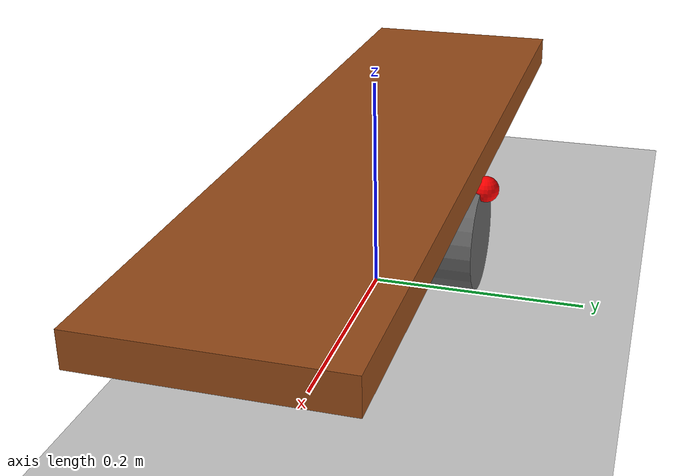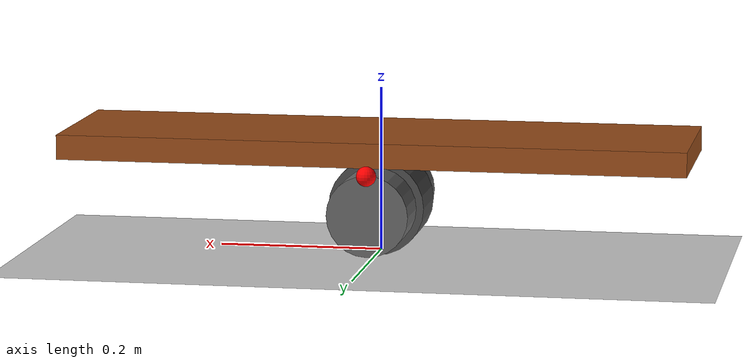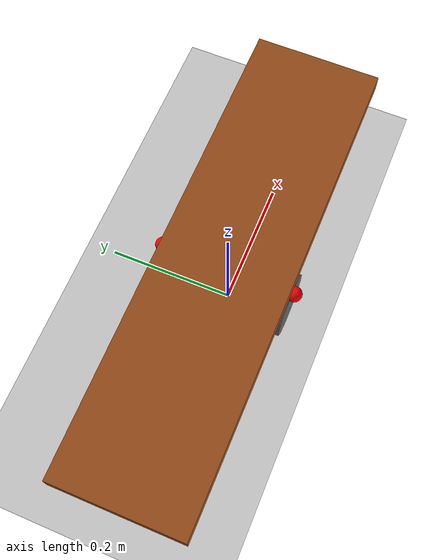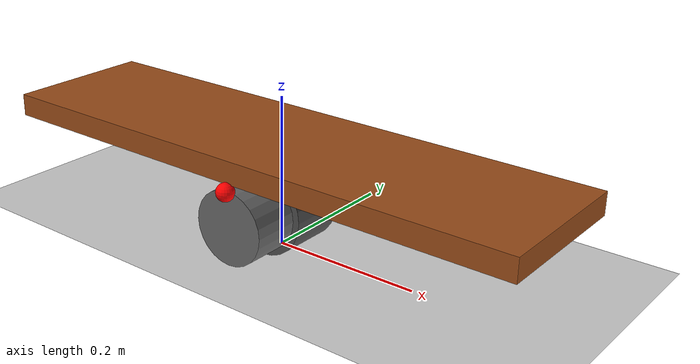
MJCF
<mujoco model="bongo board test scene">
  <include file="bongo_board.xml"/>

  <option timestep="0.002" gravity="0 0 -9.81"/>

  <statistic center="0 0 0.15" extent="1.0"/>

  <visual>
    <headlight diffuse=".8 .8 .8" ambient=".3 .3 .3" specular="1 1 1"/>
    <global azimuth="120" elevation="-20" offwidth="1280" offheight="720"/>
    <quality shadowsize="4096"/>
  </visual>

  <asset>
    <texture type="2d" name="groundplane" builtin="checker" mark="edge"
      rgb1="0.9 0.9 0.9" rgb2="0.7 0.7 0.7" markrgb="0 0 0"
      width="300" height="300"/>
    <material name="groundplane" texture="groundplane" texuniform="true"
      texrepeat="5 5" reflectance="0.1"/>
  </asset>

  <worldbody>
    <light pos="0 0 3" dir="0 0 -1" diffuse="1 1 1"/>
    <geom name="floor" size="5 5 0.01" type="plane" material="groundplane"
          friction="0.8 0.005 0.001" contype="1" conaffinity="1"/>
  </worldbody>
</mujoco>

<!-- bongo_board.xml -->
<mujoco model="bongo_board">
  <worldbody>
    <body name="board" pos="0 0 0.1318">
      <!-- roller_radius=0.05842m (2.3"), board_half_thickness=0.015m -->
      <!-- board center z = 2*radius + half_thickness = 0.11684 + 0.015 -->
      <freejoint name="board_joint"/>
      <geom name="board_top" type="box" size="0.381 0.1016 0.015"
            mass="2.0" friction="0.8 0.005 0.001"
            rgba="0.6 0.3 0.1 1"/>

      <!-- Roller: child of board, slides along X (board long axis), spins around Y -->
      <body name="roller" pos="0 0 -0.07342">
        <!-- pos = -(board_half_thickness + roller_radius) = -(0.015 + 0.05842) -->
        <!-- Roller center is one radius below board bottom -->
        <joint name="roller_slide" type="slide" axis="1 0 0"
               range="-0.2286 0.2286" damping="0.1"/>
        <joint name="roller_spin" type="hinge" axis="0 1 0" damping="0.01"/>

        <!-- Main roller: 4.6" diam x 3" wide (contacts ground) -->
        <geom name="roller_main" type="cylinder"
              size="0.05842 0.0381"
              mass="0.7" friction="0.8 0.005 0.001"
              rgba="0.3 0.3 0.3 1"
              quat="0.7071 0.7071 0 0"/>
        <!-- size: radius=0.05842 (2.3"), half-length=0.0381 (1.5") -->

        <!-- Extensions: 3.9" diam x 8" wide (full width) -->
        <geom name="roller_ext" type="cylinder"
              size="0.04953 0.1016"
              mass="0.3" friction="0.8 0.005 0.001"
              rgba="0.4 0.4 0.4 1"
              quat="0.7071 0.7071 0 0"/>
        <!-- size: radius=0.04953 (1.95"), half-length=0.1016 (4") -->

        <!-- Visual-only tracker balls on extension faces at rim -->
        <geom name="roller_tracker_L" type="sphere" size="0.012"
              pos="0 0.105 0.04953"
              rgba="1 0 0 1"
              contype="0" conaffinity="0" group="2"/>
        <geom name="roller_tracker_R" type="sphere" size="0.012"
              pos="0 -0.105 0.04953"
              rgba="1 0 0 1"
              contype="0" conaffinity="0" group="2"/>
        <!-- pos: on extension faces (y=±half_length), at extension rim (z=0.0508) -->
      </body>
    </body>
  </worldbody>

  <equality>
    <!-- No-slip rolling: slide_pos = -radius * spin_angle -->
    <!-- Uses main roller radius (0.05842) for ground contact -->
    <joint joint1="roller_slide" joint2="roller_spin"
           polycoef="0 -0.05842 0 0 0"
           solref="0.001 1" solimp="0.99 0.999 0.001"/>
  </equality>
</mujoco>
